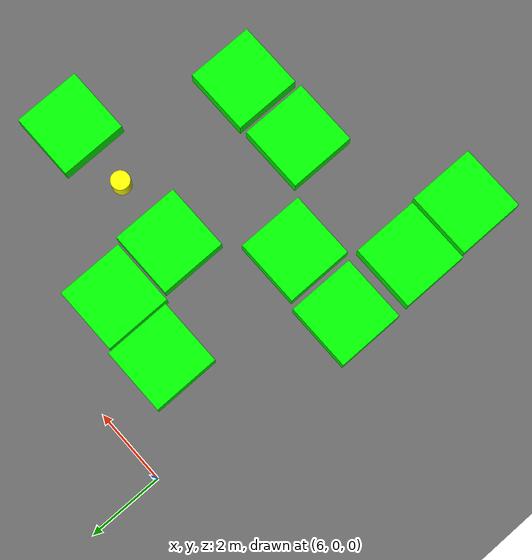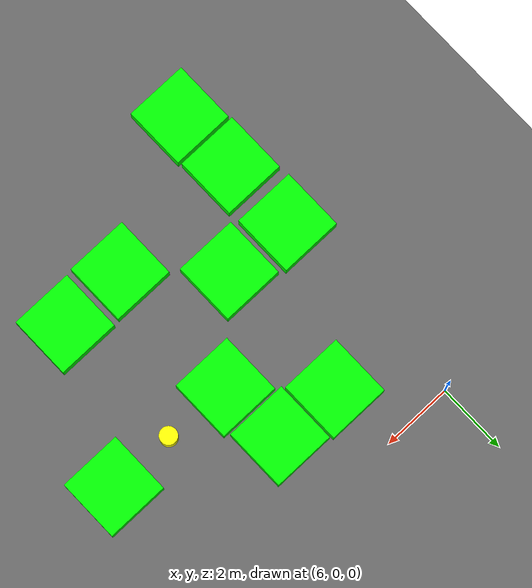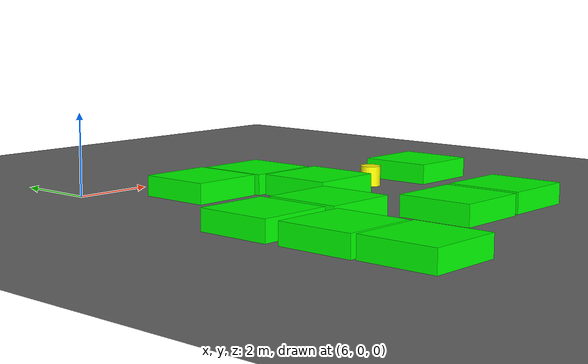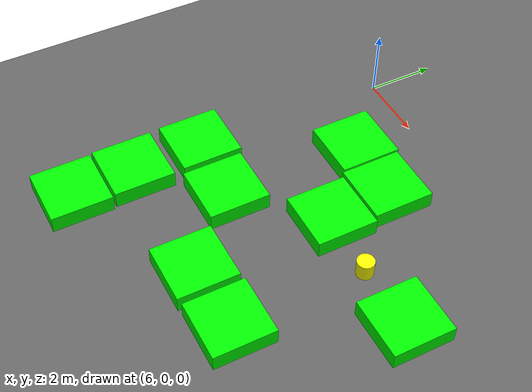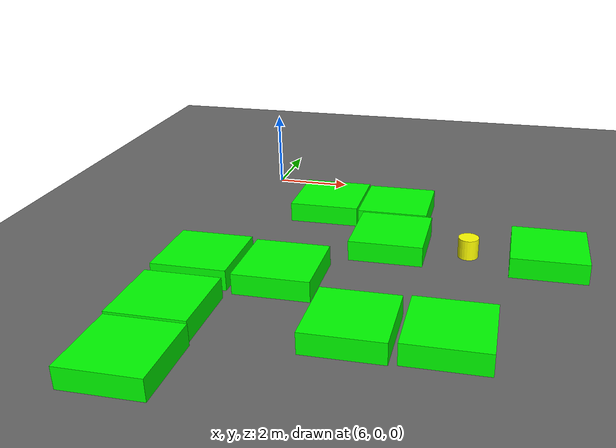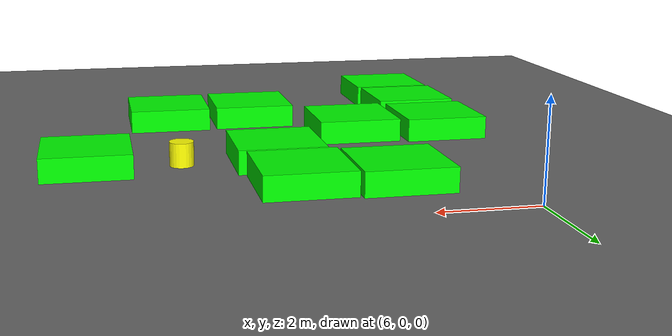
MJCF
<mujoco model="lvl5_corridor_obs10_dmid_depth1_seed2100">
    <compiler angle="degree" coordinate="local" inertiafromgeom="true"/>
    <option integrator="RK4" timestep="0.01"/>

    <asset>
        <texture builtin="gradient" height="100" rgb1="0.6 0.8 1" rgb2="0 0 0" type="skybox" width="100"/>
        <texture name="floor_texture" type="2d" builtin="checker" width="100" height="100" rgb1="0 0 0" rgb2="0.8 0.8 0.8"/>
        <material name="MatPlane" reflectance="0.5" shininess="1" specular="1" texrepeat="10 10" texture="floor_texture"/>
    </asset>

    <!-- Excluding the contact between the agent and the goal, and the agent and the floor -->
    <contact>
        <exclude body1="agent" body2="goal"/>
        <exclude body1 = "agent" body2 = "floor"/>
    </contact>

    <extension>
        <plugin plugin = "mujoco.pid">
            <instance name = "pid1">
                <config key="kp" value="2"/>
                <config key="ki" value="0"/>
                <config key="kd" value="55"/>
            </instance>
        </plugin>
    </extension>

    <worldbody>
        <light cutoff="100" diffuse="1 1 1" dir="-0 0 -1.3" directional="true" exponent="1" pos="0 0 1.3" specular=".1 .1 .1"/>
        <body name="floor" pos="0 0 0">
            <geom name="floor_geom" type="plane" size="20 20 0.1" material="MatPlane"/>
        </body>

                <body name="goal" pos="0.0000 0.0000 0">
            <geom name="goal_geom" type="plane" size="0.5 0.5 1" pos="0 0 0" rgba="1 0 0 1"/>
        </body>

                <body name="agent" pos="12.0000 -4.0000 0.250">
            <joint name="j1" type="slide" axis ="1 0 0 "/>
            <joint name="j2" type="slide" axis ="0 1 0 "/>
            <geom name="agent_geom" type="cylinder" size="0.25 0.25 0.250" rgba="1 1 0 1"/>
        </body>

        <body name="obstacle1" pos="8.0763 -1.9531 0.250">  <geom name="obstacle1_geom" type="box" size="0.9000 0.9000 0.250" rgba="0 1 0 1"/></body>
        <body name="obstacle2" pos="9.9301 -2.0396 0.250">  <geom name="obstacle2_geom" type="box" size="0.9000 0.9000 0.250" rgba="0 1 0 1"/></body>
        <body name="obstacle3" pos="10.0854 -3.9124 0.250">  <geom name="obstacle3_geom" type="box" size="0.9000 0.9000 0.250" rgba="0 1 0 1"/></body>
        <body name="obstacle4" pos="13.9019 -4.0077 0.250">  <geom name="obstacle4_geom" type="box" size="0.9000 0.9000 0.250" rgba="0 1 0 1"/></body>
        <body name="obstacle5" pos="5.9714 -5.9380 0.250">  <geom name="obstacle5_geom" type="box" size="0.9000 0.9000 0.250" rgba="0 1 0 1"/></body>
        <body name="obstacle6" pos="7.9357 -6.0511 0.250">  <geom name="obstacle6_geom" type="box" size="0.9000 0.9000 0.250" rgba="0 1 0 1"/></body>
        <body name="obstacle7" pos="6.0095 -8.0451 0.250">  <geom name="obstacle7_geom" type="box" size="0.9000 0.9000 0.250" rgba="0 1 0 1"/></body>
        <body name="obstacle8" pos="9.9886 -7.9834 0.250">  <geom name="obstacle8_geom" type="box" size="0.9000 0.9000 0.250" rgba="0 1 0 1"/></body>
        <body name="obstacle9" pos="11.9605 -7.9392 0.250">  <geom name="obstacle9_geom" type="box" size="0.9000 0.9000 0.250" rgba="0 1 0 1"/></body>
        <body name="obstacle10" pos="6.0659 -9.9265 0.250">  <geom name="obstacle10_geom" type="box" size="0.9000 0.9000 0.250" rgba="0 1 0 1"/></body>

    </worldbody>

    <sensor>
<!-- SENSORS -->

        <distance name="dist1" geom1="agent_geom" geom2="obstacle1_geom" cutoff="1.5"/>
        <distance name="dist2" geom1="agent_geom" geom2="obstacle2_geom" cutoff="1.5"/>
        <distance name="dist3" geom1="agent_geom" geom2="obstacle3_geom" cutoff="1.5"/>
        <distance name="dist4" geom1="agent_geom" geom2="obstacle4_geom" cutoff="1.5"/>
        <distance name="dist5" geom1="agent_geom" geom2="obstacle5_geom" cutoff="1.5"/>
        <distance name="dist6" geom1="agent_geom" geom2="obstacle6_geom" cutoff="1.5"/>
        <distance name="dist7" geom1="agent_geom" geom2="obstacle7_geom" cutoff="1.5"/>
        <distance name="dist8" geom1="agent_geom" geom2="obstacle8_geom" cutoff="1.5"/>
        <distance name="dist9" geom1="agent_geom" geom2="obstacle9_geom" cutoff="1.5"/>
        <distance name="dist10" geom1="agent_geom" geom2="obstacle10_geom" cutoff="1.5"/>
</sensor>

    <actuator>
        <plugin joint="j1" plugin="mujoco.pid" instance="pid1" />
        <plugin joint="j2" plugin="mujoco.pid" instance="pid1"/>
    </actuator>
</mujoco>
